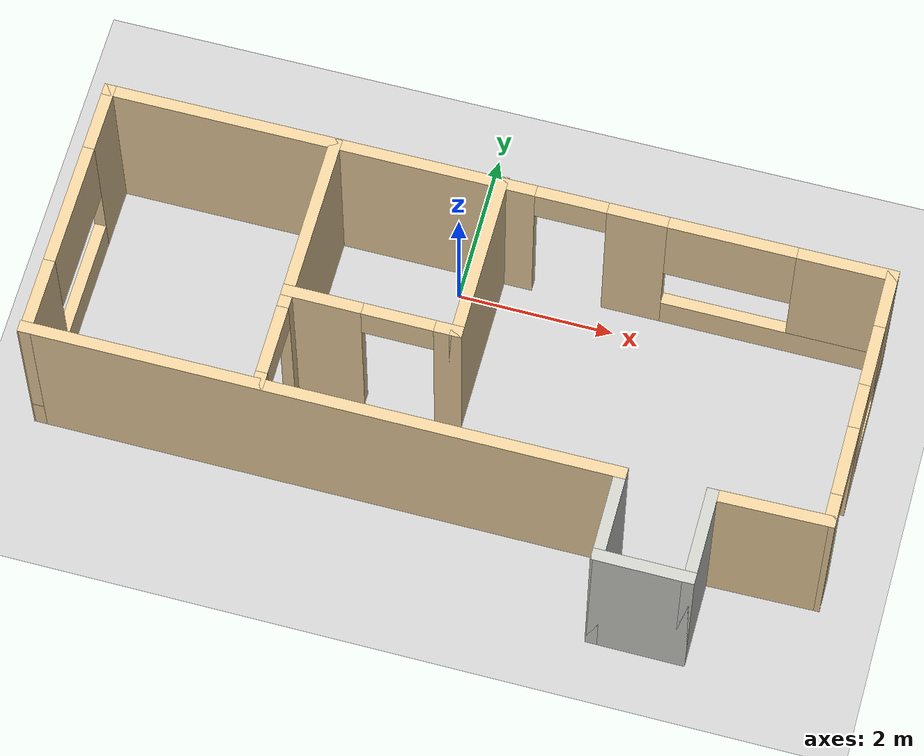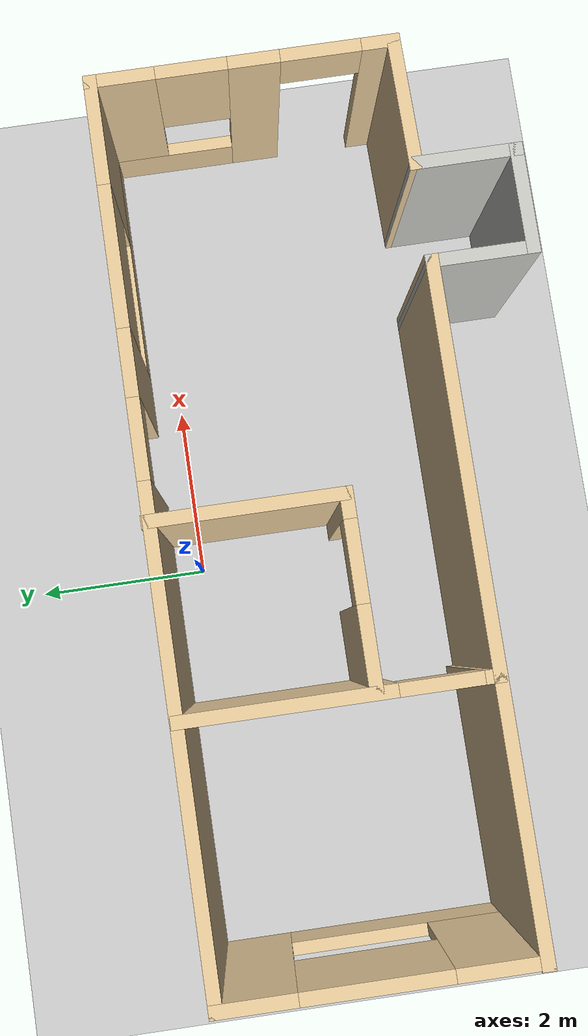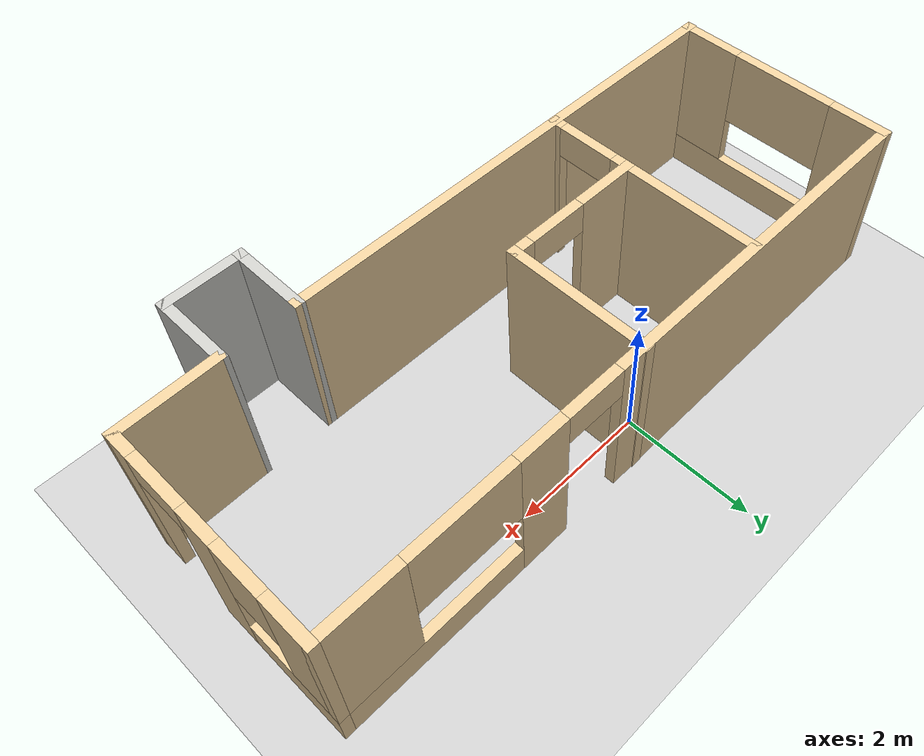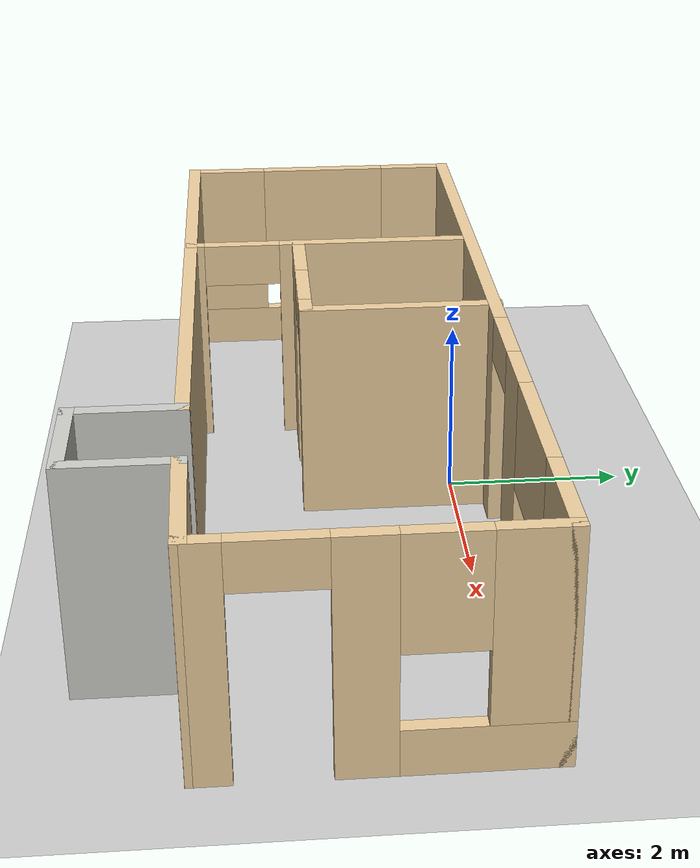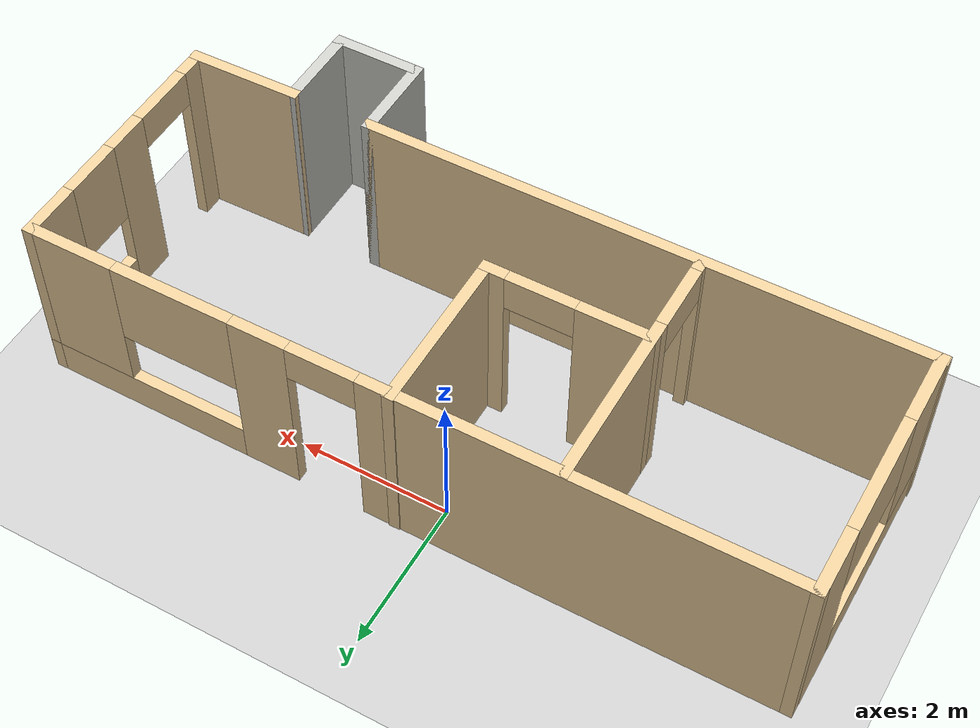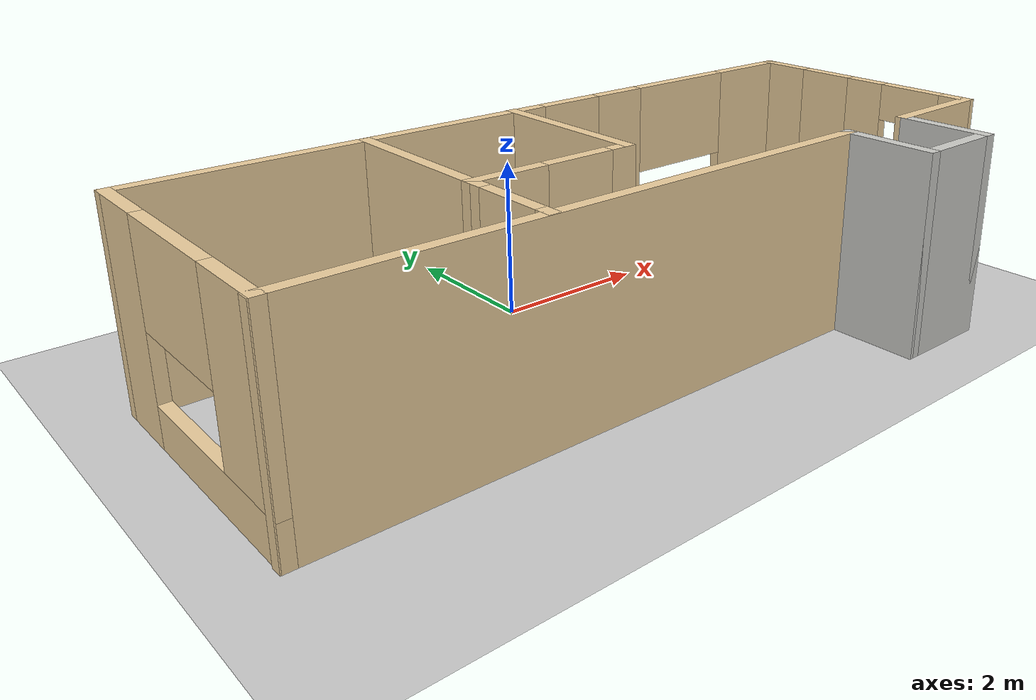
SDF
<sdf version="1.6">
 <world name="default">
  <model name="ground_plane">
   <static>1</static>
   <link name="link">
    <collision name="collision">
     <geometry><plane><normal>0 0 1</normal><size>100 100</size></plane></geometry>
     <surface><friction><ode><mu>100</mu><mu2>50</mu2></ode></friction></surface>
    </collision>
    <visual name="visual">
     <cast_shadows>0</cast_shadows>
     <geometry><plane><normal>0 0 1</normal><size>100 100</size></plane></geometry>
     <material>
      <script><uri>file://media/materials/scripts/gazebo.material</uri><name>Gazebo/Grey</name></script>
     </material>
    </visual>
   </link>
  </model>
  <model name="Building">
   <link name="Wall_0">
    <pose>0.006799 2.23043 0 0 -0 0</pose>
    <visual name="Wall_0_Visual_0">
     <pose>-2.25197 0 1.25 0 -0 0</pose>
     <geometry><box><size>5.49606 0.15 2.5</size></box></geometry>
     <material>
      <script><uri>file://media/materials/scripts/gazebo.material</uri><name>Gazebo/Grey</name></script>
      <ambient>0.921569 0.807843 0.615686 1</ambient>
      <shader type="pixel"/>
      <diffuse>0.7 0.7 0.7 1</diffuse>
      <specular>0.01 0.01 0.01 1</specular>
      <emissive>0 0 0 1</emissive>
     </material>
     <meta><layer>0</layer></meta>
    </visual>
    <visual name="Wall_0_Visual_1">
     <pose>1.77424 0 1.25 0 -0 0</pose>
     <geometry><box><size>0.756344 0.15 2.5</size></box></geometry>
     <material>
      <script><uri>file://media/materials/scripts/gazebo.material</uri><name>Gazebo/Grey</name></script>
      <ambient>0.921569 0.807843 0.615686 1</ambient>
      <shader type="pixel"/>
      <diffuse>0.7 0.7 0.7 1</diffuse>
      <specular>0.01 0.01 0.01 1</specular>
      <emissive>0 0 0 1</emissive>
     </material>
     <meta><layer>0</layer></meta>
    </visual>
    <visual name="Wall_0_Visual_2">
     <pose>3.5762 0 0.25 0 -0 0</pose>
     <geometry><box><size>2.84759 0.15 0.5</size></box></geometry>
     <material>
      <script><uri>file://media/materials/scripts/gazebo.material</uri><name>Gazebo/Grey</name></script>
      <ambient>0.921569 0.807843 0.615686 1</ambient>
      <shader type="pixel"/>
      <diffuse>0.7 0.7 0.7 1</diffuse>
      <specular>0.01 0.01 0.01 1</specular>
      <emissive>0 0 0 1</emissive>
     </material>
     <meta><layer>0</layer></meta>
    </visual>
    <visual name="Wall_0_Visual_3">
     <pose>4.3762 0 1.5 0 -0 0</pose>
     <geometry><box><size>1.24759 0.15 2</size></box></geometry>
     <material>
      <script><uri>file://media/materials/scripts/gazebo.material</uri><name>Gazebo/Grey</name></script>
      <ambient>0.921569 0.807843 0.615686 1</ambient>
      <shader type="pixel"/>
      <diffuse>0.7 0.7 0.7 1</diffuse>
      <specular>0.01 0.01 0.01 1</specular>
      <emissive>0 0 0 1</emissive>
     </material>
     <meta><layer>0</layer></meta>
    </visual>
    <visual name="Wall_0_Visual_4">
     <pose>2.95241 0 1.9 0 -0 0</pose>
     <geometry><box><size>1.6 0.15 1.2</size></box></geometry>
     <material>
      <script><uri>file://media/materials/scripts/gazebo.material</uri><name>Gazebo/Grey</name></script>
      <ambient>0.921569 0.807843 0.615686 1</ambient>
      <shader type="pixel"/>
      <diffuse>0.7 0.7 0.7 1</diffuse>
      <specular>0.01 0.01 0.01 1</specular>
      <emissive>0 0 0 1</emissive>
     </material>
     <meta><layer>0</layer></meta>
    </visual>
    <visual name="Wall_0_Visual_5">
     <pose>0.946064 0 2.25 0 -0 0</pose>
     <geometry><box><size>0.9 0.15 0.5</size></box></geometry>
     <material>
      <script><uri>file://media/materials/scripts/gazebo.material</uri><name>Gazebo/Grey</name></script>
      <ambient>0.921569 0.807843 0.615686 1</ambient>
      <shader type="pixel"/>
      <diffuse>0.7 0.7 0.7 1</diffuse>
      <specular>0.01 0.01 0.01 1</specular>
      <emissive>0 0 0 1</emissive>
     </material>
     <meta><layer>0</layer></meta>
    </visual>
    <collision name="Wall_0_Collision_4">
     <pose>2.95241 0 1.9 0 -0 0</pose>
     <geometry><box><size>1.6 0.15 1.2</size></box></geometry>
     <surface>
      <friction>
       <ode><mu>1</mu><mu2>1</mu2><fdir1>0 0 0</fdir1><slip1>0</slip1><slip2>0</slip2></ode>
       <torsional>
        <coefficient>1</coefficient>
        <patch_radius>0</patch_radius>
        <surface_radius>0</surface_radius>
        <use_patch_radius>1</use_patch_radius>
        <ode><slip>0</slip></ode>
       </torsional>
      </friction>
      <bounce><restitution_coefficient>0</restitution_coefficient><threshold>1e+06</threshold></bounce>
      <contact>
       <collide_without_contact>0</collide_without_contact>
       <collide_without_contact_bitmask>1</collide_without_contact_bitmask>
       <collide_bitmask>1</collide_bitmask>
       <ode>
        <soft_cfm>0</soft_cfm>
        <soft_erp>0.2</soft_erp>
        <kp>1e+13</kp>
        <kd>1</kd>
        <max_vel>0.01</max_vel>
        <min_depth>0</min_depth>
       </ode>
       <bullet>
        <split_impulse>1</split_impulse>
        <split_impulse_penetration_threshold>-0.01</split_impulse_penetration_threshold>
        <soft_cfm>0</soft_cfm>
        <soft_erp>0.2</soft_erp>
        <kp>1e+13</kp>
        <kd>1</kd>
       </bullet>
      </contact>
     </surface>
    </collision>
    <collision name="Wall_0_Collision_0">
     <pose>-2.25197 0 1.25 0 -0 0</pose>
     <geometry><box><size>5.49606 0.15 2.5</size></box></geometry>
     <surface>
      <friction>
       <ode><mu>1</mu><mu2>1</mu2><fdir1>0 0 0</fdir1><slip1>0</slip1><slip2>0</slip2></ode>
       <torsional>
        <coefficient>1</coefficient>
        <patch_radius>0</patch_radius>
        <surface_radius>0</surface_radius>
        <use_patch_radius>1</use_patch_radius>
        <ode><slip>0</slip></ode>
       </torsional>
      </friction>
      <bounce><restitution_coefficient>0</restitution_coefficient><threshold>1e+06</threshold></bounce>
      <contact>
       <collide_without_contact>0</collide_without_contact>
       <collide_without_contact_bitmask>1</collide_without_contact_bitmask>
       <collide_bitmask>1</collide_bitmask>
       <ode>
        <soft_cfm>0</soft_cfm>
        <soft_erp>0.2</soft_erp>
        <kp>1e+13</kp>
        <kd>1</kd>
        <max_vel>0.01</max_vel>
        <min_depth>0</min_depth>
       </ode>
       <bullet>
        <split_impulse>1</split_impulse>
        <split_impulse_penetration_threshold>-0.01</split_impulse_penetration_threshold>
        <soft_cfm>0</soft_cfm>
        <soft_erp>0.2</soft_erp>
        <kp>1e+13</kp>
        <kd>1</kd>
       </bullet>
      </contact>
     </surface>
    </collision>
    <collision name="Wall_0_Collision_1">
     <pose>1.77424 0 1.25 0 -0 0</pose>
     <geometry><box><size>0.756344 0.15 2.5</size></box></geometry>
     <surface>
      <friction>
       <ode><mu>1</mu><mu2>1</mu2><fdir1>0 0 0</fdir1><slip1>0</slip1><slip2>0</slip2></ode>
       <torsional>
        <coefficient>1</coefficient>
        <patch_radius>0</patch_radius>
        <surface_radius>0</surface_radius>
        <use_patch_radius>1</use_patch_radius>
        <ode><slip>0</slip></ode>
       </torsional>
      </friction>
      <bounce><restitution_coefficient>0</restitution_coefficient><threshold>1e+06</threshold></bounce>
      <contact>
       <collide_without_contact>0</collide_without_contact>
       <collide_without_contact_bitmask>1</collide_without_contact_bitmask>
       <collide_bitmask>1</collide_bitmask>
       <ode>
        <soft_cfm>0</soft_cfm>
        <soft_erp>0.2</soft_erp>
        <kp>1e+13</kp>
        <kd>1</kd>
        <max_vel>0.01</max_vel>
        <min_depth>0</min_depth>
       </ode>
       <bullet>
        <split_impulse>1</split_impulse>
        <split_impulse_penetration_threshold>-0.01</split_impulse_penetration_threshold>
        <soft_cfm>0</soft_cfm>
        <soft_erp>0.2</soft_erp>
        <kp>1e+13</kp>
        <kd>1</kd>
       </bullet>
      </contact>
     </surface>
    </collision>
    <collision name="Wall_0_Collision_2">
     <pose>3.5762 0 0.25 0 -0 0</pose>
     <geometry><box><size>2.84759 0.15 0.5</size></box></geometry>
     <surface>
      <friction>
       <ode><mu>1</mu><mu2>1</mu2><fdir1>0 0 0</fdir1><slip1>0</slip1><slip2>0</slip2></ode>
       <torsional>
        <coefficient>1</coefficient>
        <patch_radius>0</patch_radius>
        <surface_radius>0</surface_radius>
        <use_patch_radius>1</use_patch_radius>
        <ode><slip>0</slip></ode>
       </torsional>
      </friction>
      <bounce><restitution_coefficient>0</restitution_coefficient><threshold>1e+06</threshold></bounce>
      <contact>
       <collide_without_contact>0</collide_without_contact>
       <collide_without_contact_bitmask>1</collide_without_contact_bitmask>
       <collide_bitmask>1</collide_bitmask>
       <ode>
        <soft_cfm>0</soft_cfm>
        <soft_erp>0.2</soft_erp>
        <kp>1e+13</kp>
        <kd>1</kd>
        <max_vel>0.01</max_vel>
        <min_depth>0</min_depth>
       </ode>
       <bullet>
        <split_impulse>1</split_impulse>
        <split_impulse_penetration_threshold>-0.01</split_impulse_penetration_threshold>
        <soft_cfm>0</soft_cfm>
        <soft_erp>0.2</soft_erp>
        <kp>1e+13</kp>
        <kd>1</kd>
       </bullet>
      </contact>
     </surface>
    </collision>
    <collision name="Wall_0_Collision_3">
     <pose>4.3762 0 1.5 0 -0 0</pose>
     <geometry><box><size>1.24759 0.15 2</size></box></geometry>
     <surface>
      <friction>
       <ode><mu>1</mu><mu2>1</mu2><fdir1>0 0 0</fdir1><slip1>0</slip1><slip2>0</slip2></ode>
       <torsional>
        <coefficient>1</coefficient>
        <patch_radius>0</patch_radius>
        <surface_radius>0</surface_radius>
        <use_patch_radius>1</use_patch_radius>
        <ode><slip>0</slip></ode>
       </torsional>
      </friction>
      <bounce><restitution_coefficient>0</restitution_coefficient><threshold>1e+06</threshold></bounce>
      <contact>
       <collide_without_contact>0</collide_without_contact>
       <collide_without_contact_bitmask>1</collide_without_contact_bitmask>
       <collide_bitmask>1</collide_bitmask>
       <ode>
        <soft_cfm>0</soft_cfm>
        <soft_erp>0.2</soft_erp>
        <kp>1e+13</kp>
        <kd>1</kd>
        <max_vel>0.01</max_vel>
        <min_depth>0</min_depth>
       </ode>
       <bullet>
        <split_impulse>1</split_impulse>
        <split_impulse_penetration_threshold>-0.01</split_impulse_penetration_threshold>
        <soft_cfm>0</soft_cfm>
        <soft_erp>0.2</soft_erp>
        <kp>1e+13</kp>
        <kd>1</kd>
       </bullet>
      </contact>
     </surface>
    </collision>
    <collision name="Wall_0_Collision_5">
     <pose>0.946064 0 2.25 0 -0 0</pose>
     <geometry><box><size>0.9 0.15 0.5</size></box></geometry>
     <surface>
      <friction>
       <ode><mu>1</mu><mu2>1</mu2><fdir1>0 0 0</fdir1><slip1>0</slip1><slip2>0</slip2></ode>
       <torsional>
        <coefficient>1</coefficient>
        <patch_radius>0</patch_radius>
        <surface_radius>0</surface_radius>
        <use_patch_radius>1</use_patch_radius>
        <ode><slip>0</slip></ode>
       </torsional>
      </friction>
      <bounce><restitution_coefficient>0</restitution_coefficient><threshold>1e+06</threshold></bounce>
      <contact>
       <collide_without_contact>0</collide_without_contact>
       <collide_without_contact_bitmask>1</collide_without_contact_bitmask>
       <collide_bitmask>1</collide_bitmask>
       <ode>
        <soft_cfm>0</soft_cfm>
        <soft_erp>0.2</soft_erp>
        <kp>1e+13</kp>
        <kd>1</kd>
        <max_vel>0.01</max_vel>
        <min_depth>0</min_depth>
       </ode>
       <bullet>
        <split_impulse>1</split_impulse>
        <split_impulse_penetration_threshold>-0.01</split_impulse_penetration_threshold>
        <soft_cfm>0</soft_cfm>
        <soft_erp>0.2</soft_erp>
        <kp>1e+13</kp>
        <kd>1</kd>
       </bullet>
      </contact>
     </surface>
    </collision>
   </link>
   <link name="Wall_16">
    <pose>-1.25812 -1.14465 0 0 -0 0</pose>
    <visual name="Wall_16_Visual">
     <pose>0 0 1.25 0 -0 0</pose>
     <geometry><box><size>7.5 0.15 2.5</size></box></geometry>
     <material>
      <script><uri>file://media/materials/scripts/gazebo.material</uri><name>Gazebo/Grey</name></script>
      <ambient>0.921569 0.807843 0.615686 1</ambient>
      <shader type="pixel"/>
      <diffuse>0.7 0.7 0.7 1</diffuse>
      <specular>0.01 0.01 0.01 1</specular>
      <emissive>0 0 0 1</emissive>
     </material>
     <meta><layer>0</layer></meta>
    </visual>
    <collision name="Wall_16_Collision">
     <pose>0 0 1.25 0 -0 0</pose>
     <geometry><box><size>7.5 0.15 2.5</size></box></geometry>
     <surface>
      <friction>
       <ode><mu>1</mu><mu2>1</mu2><fdir1>0 0 0</fdir1><slip1>0</slip1><slip2>0</slip2></ode>
       <torsional>
        <coefficient>1</coefficient>
        <patch_radius>0</patch_radius>
        <surface_radius>0</surface_radius>
        <use_patch_radius>1</use_patch_radius>
        <ode><slip>0</slip></ode>
       </torsional>
      </friction>
      <bounce><restitution_coefficient>0</restitution_coefficient><threshold>1e+06</threshold></bounce>
      <contact>
       <collide_without_contact>0</collide_without_contact>
       <collide_without_contact_bitmask>1</collide_without_contact_bitmask>
       <collide_bitmask>1</collide_bitmask>
       <ode>
        <soft_cfm>0</soft_cfm>
        <soft_erp>0.2</soft_erp>
        <kp>1e+13</kp>
        <kd>1</kd>
        <max_vel>0.01</max_vel>
        <min_depth>0</min_depth>
       </ode>
       <bullet>
        <split_impulse>1</split_impulse>
        <split_impulse_penetration_threshold>-0.01</split_impulse_penetration_threshold>
        <soft_cfm>0</soft_cfm>
        <soft_erp>0.2</soft_erp>
        <kp>1e+13</kp>
        <kd>1</kd>
       </bullet>
      </contact>
     </surface>
    </collision>
   </link>
   <link name="Wall_2">
    <pose>-4.9182 0.542893 0 0 0 -1.5708</pose>
    <visual name="Wall_2_Visual_0">
     <pose>-1.30389 0 1.25 0 -0 0</pose>
     <geometry><box><size>0.917433 0.15 2.5</size></box></geometry>
     <material>
      <script><uri>file://media/materials/scripts/gazebo.material</uri><name>Gazebo/Grey</name></script>
      <ambient>0.921569 0.807843 0.615686 1</ambient>
      <shader type="pixel"/>
      <diffuse>0.7 0.7 0.7 1</diffuse>
      <specular>0.01 0.01 0.01 1</specular>
      <emissive>0 0 0 1</emissive>
     </material>
     <meta><layer>0</layer></meta>
    </visual>
    <visual name="Wall_2_Visual_1">
     <pose>0.458716 0 0.25 0 -0 0</pose>
     <geometry><box><size>2.60778 0.15 0.5</size></box></geometry>
     <material>
      <script><uri>file://media/materials/scripts/gazebo.material</uri><name>Gazebo/Grey</name></script>
      <ambient>0.921569 0.807843 0.615686 1</ambient>
      <shader type="pixel"/>
      <diffuse>0.7 0.7 0.7 1</diffuse>
      <specular>0.01 0.01 0.01 1</specular>
      <emissive>0 0 0 1</emissive>
     </material>
     <meta><layer>0</layer></meta>
    </visual>
    <visual name="Wall_2_Visual_2">
     <pose>1.25872 0 1.5 0 -0 0</pose>
     <geometry><box><size>1.00778 0.15 2</size></box></geometry>
     <material>
      <script><uri>file://media/materials/scripts/gazebo.material</uri><name>Gazebo/Grey</name></script>
      <ambient>0.921569 0.807843 0.615686 1</ambient>
      <shader type="pixel"/>
      <diffuse>0.7 0.7 0.7 1</diffuse>
      <specular>0.01 0.01 0.01 1</specular>
      <emissive>0 0 0 1</emissive>
     </material>
     <meta><layer>0</layer></meta>
    </visual>
    <visual name="Wall_2_Visual_3">
     <pose>-0.045176 0 1.9 0 -0 0</pose>
     <geometry><box><size>1.6 0.15 1.2</size></box></geometry>
     <material>
      <script><uri>file://media/materials/scripts/gazebo.material</uri><name>Gazebo/Grey</name></script>
      <ambient>0.921569 0.807843 0.615686 1</ambient>
      <shader type="pixel"/>
      <diffuse>0.7 0.7 0.7 1</diffuse>
      <specular>0.01 0.01 0.01 1</specular>
      <emissive>0 0 0 1</emissive>
     </material>
     <meta><layer>0</layer></meta>
    </visual>
    <collision name="Wall_2_Collision_0">
     <pose>-1.30389 0 1.25 0 -0 0</pose>
     <geometry><box><size>0.917433 0.15 2.5</size></box></geometry>
     <surface>
      <friction>
       <ode><mu>1</mu><mu2>1</mu2><fdir1>0 0 0</fdir1><slip1>0</slip1><slip2>0</slip2></ode>
       <torsional>
        <coefficient>1</coefficient>
        <patch_radius>0</patch_radius>
        <surface_radius>0</surface_radius>
        <use_patch_radius>1</use_patch_radius>
        <ode><slip>0</slip></ode>
       </torsional>
      </friction>
      <bounce><restitution_coefficient>0</restitution_coefficient><threshold>1e+06</threshold></bounce>
      <contact>
       <collide_without_contact>0</collide_without_contact>
       <collide_without_contact_bitmask>1</collide_without_contact_bitmask>
       <collide_bitmask>1</collide_bitmask>
       <ode>
        <soft_cfm>0</soft_cfm>
        <soft_erp>0.2</soft_erp>
        <kp>1e+13</kp>
        <kd>1</kd>
        <max_vel>0.01</max_vel>
        <min_depth>0</min_depth>
       </ode>
       <bullet>
        <split_impulse>1</split_impulse>
        <split_impulse_penetration_threshold>-0.01</split_impulse_penetration_threshold>
        <soft_cfm>0</soft_cfm>
        <soft_erp>0.2</soft_erp>
        <kp>1e+13</kp>
        <kd>1</kd>
       </bullet>
      </contact>
     </surface>
    </collision>
    <collision name="Wall_2_Collision_1">
     <pose>0.458716 0 0.25 0 -0 0</pose>
     <geometry><box><size>2.60778 0.15 0.5</size></box></geometry>
     <surface>
      <friction>
       <ode><mu>1</mu><mu2>1</mu2><fdir1>0 0 0</fdir1><slip1>0</slip1><slip2>0</slip2></ode>
       <torsional>
        <coefficient>1</coefficient>
        <patch_radius>0</patch_radius>
        <surface_radius>0</surface_radius>
        <use_patch_radius>1</use_patch_radius>
        <ode><slip>0</slip></ode>
       </torsional>
      </friction>
      <bounce><restitution_coefficient>0</restitution_coefficient><threshold>1e+06</threshold></bounce>
      <contact>
       <collide_without_contact>0</collide_without_contact>
       <collide_without_contact_bitmask>1</collide_without_contact_bitmask>
       <collide_bitmask>1</collide_bitmask>
       <ode>
        <soft_cfm>0</soft_cfm>
        <soft_erp>0.2</soft_erp>
        <kp>1e+13</kp>
        <kd>1</kd>
        <max_vel>0.01</max_vel>
        <min_depth>0</min_depth>
       </ode>
       <bullet>
        <split_impulse>1</split_impulse>
        <split_impulse_penetration_threshold>-0.01</split_impulse_penetration_threshold>
        <soft_cfm>0</soft_cfm>
        <soft_erp>0.2</soft_erp>
        <kp>1e+13</kp>
        <kd>1</kd>
       </bullet>
      </contact>
     </surface>
    </collision>
    <collision name="Wall_2_Collision_2">
     <pose>1.25872 0 1.5 0 -0 0</pose>
     <geometry><box><size>1.00778 0.15 2</size></box></geometry>
     <surface>
      <friction>
       <ode><mu>1</mu><mu2>1</mu2><fdir1>0 0 0</fdir1><slip1>0</slip1><slip2>0</slip2></ode>
       <torsional>
        <coefficient>1</coefficient>
        <patch_radius>0</patch_radius>
        <surface_radius>0</surface_radius>
        <use_patch_radius>1</use_patch_radius>
        <ode><slip>0</slip></ode>
       </torsional>
      </friction>
      <bounce><restitution_coefficient>0</restitution_coefficient><threshold>1e+06</threshold></bounce>
      <contact>
       <collide_without_contact>0</collide_without_contact>
       <collide_without_contact_bitmask>1</collide_without_contact_bitmask>
       <collide_bitmask>1</collide_bitmask>
       <ode>
        <soft_cfm>0</soft_cfm>
        <soft_erp>0.2</soft_erp>
        <kp>1e+13</kp>
        <kd>1</kd>
        <max_vel>0.01</max_vel>
        <min_depth>0</min_depth>
       </ode>
       <bullet>
        <split_impulse>1</split_impulse>
        <split_impulse_penetration_threshold>-0.01</split_impulse_penetration_threshold>
        <soft_cfm>0</soft_cfm>
        <soft_erp>0.2</soft_erp>
        <kp>1e+13</kp>
        <kd>1</kd>
       </bullet>
      </contact>
     </surface>
    </collision>
    <collision name="Wall_2_Collision_3">
     <pose>-0.045176 0 1.9 0 -0 0</pose>
     <geometry><box><size>1.6 0.15 1.2</size></box></geometry>
     <surface>
      <friction>
       <ode><mu>1</mu><mu2>1</mu2><fdir1>0 0 0</fdir1><slip1>0</slip1><slip2>0</slip2></ode>
       <torsional>
        <coefficient>1</coefficient>
        <patch_radius>0</patch_radius>
        <surface_radius>0</surface_radius>
        <use_patch_radius>1</use_patch_radius>
        <ode><slip>0</slip></ode>
       </torsional>
      </friction>
      <bounce><restitution_coefficient>0</restitution_coefficient><threshold>1e+06</threshold></bounce>
      <contact>
       <collide_without_contact>0</collide_without_contact>
       <collide_without_contact_bitmask>1</collide_without_contact_bitmask>
       <collide_bitmask>1</collide_bitmask>
       <ode>
        <soft_cfm>0</soft_cfm>
        <soft_erp>0.2</soft_erp>
        <kp>1e+13</kp>
        <kd>1</kd>
        <max_vel>0.01</max_vel>
        <min_depth>0</min_depth>
       </ode>
       <bullet>
        <split_impulse>1</split_impulse>
        <split_impulse_penetration_threshold>-0.01</split_impulse_penetration_threshold>
        <soft_cfm>0</soft_cfm>
        <soft_erp>0.2</soft_erp>
        <kp>1e+13</kp>
        <kd>1</kd>
       </bullet>
      </contact>
     </surface>
    </collision>
   </link>
   <link name="Wall_28">
    <pose>0.069517 1.19465 0 0 -0 1.5708</pose>
    <visual name="Wall_28_Visual">
     <pose>0 0 1.25 0 -0 0</pose>
     <geometry><box><size>2.25 0.15 2.5</size></box></geometry>
     <material>
      <script><uri>file://media/materials/scripts/gazebo.material</uri><name>Gazebo/Grey</name></script>
      <ambient>0.921569 0.807843 0.615686 1</ambient>
      <shader type="pixel"/>
      <diffuse>0.7 0.7 0.7 1</diffuse>
      <specular>0.01 0.01 0.01 1</specular>
      <emissive>0 0 0 1</emissive>
     </material>
     <meta><layer>0</layer></meta>
    </visual>
    <collision name="Wall_28_Collision">
     <pose>0 0 1.25 0 -0 0</pose>
     <geometry><box><size>2.25 0.15 2.5</size></box></geometry>
     <surface>
      <friction>
       <ode><mu>1</mu><mu2>1</mu2><fdir1>0 0 0</fdir1><slip1>0</slip1><slip2>0</slip2></ode>
       <torsional>
        <coefficient>1</coefficient>
        <patch_radius>0</patch_radius>
        <surface_radius>0</surface_radius>
        <use_patch_radius>1</use_patch_radius>
        <ode><slip>0</slip></ode>
       </torsional>
      </friction>
      <bounce><restitution_coefficient>0</restitution_coefficient><threshold>1e+06</threshold></bounce>
      <contact>
       <collide_without_contact>0</collide_without_contact>
       <collide_without_contact_bitmask>1</collide_without_contact_bitmask>
       <collide_bitmask>1</collide_bitmask>
       <ode>
        <soft_cfm>0</soft_cfm>
        <soft_erp>0.2</soft_erp>
        <kp>1e+13</kp>
        <kd>1</kd>
        <max_vel>0.01</max_vel>
        <min_depth>0</min_depth>
       </ode>
       <bullet>
        <split_impulse>1</split_impulse>
        <split_impulse_penetration_threshold>-0.01</split_impulse_penetration_threshold>
        <soft_cfm>0</soft_cfm>
        <soft_erp>0.2</soft_erp>
        <kp>1e+13</kp>
        <kd>1</kd>
       </bullet>
      </contact>
     </surface>
    </collision>
   </link>
   <link name="Wall_33">
    <pose>2.41688 -1.69465 0 0 0 -1.5708</pose>
    <visual name="Wall_33_Visual">
     <pose>0 0 1.25 0 -0 0</pose>
     <geometry><box><size>1.25 0.15 2.5</size></box></geometry>
     <material>
      <script><uri>file://media/materials/scripts/gazebo.material</uri><name>Gazebo/CeilingTiled</name></script>
      <ambient>0.921569 0.807843 0.615686 1</ambient>
      <shader type="pixel"/>
      <diffuse>1 1 1 1</diffuse>
      <specular>0 0 0 1</specular>
      <emissive>0 0 0 1</emissive>
     </material>
     <meta><layer>0</layer></meta>
    </visual>
    <collision name="Wall_33_Collision">
     <pose>0 0 1.25 0 -0 0</pose>
     <geometry><box><size>1.25 0.15 2.5</size></box></geometry>
     <surface>
      <friction>
       <ode><mu>1</mu><mu2>1</mu2><fdir1>0 0 0</fdir1><slip1>0</slip1><slip2>0</slip2></ode>
       <torsional>
        <coefficient>1</coefficient>
        <patch_radius>0</patch_radius>
        <surface_radius>0</surface_radius>
        <use_patch_radius>1</use_patch_radius>
        <ode><slip>0</slip></ode>
       </torsional>
      </friction>
      <bounce><restitution_coefficient>0</restitution_coefficient><threshold>1e+06</threshold></bounce>
      <contact>
       <collide_without_contact>0</collide_without_contact>
       <collide_without_contact_bitmask>1</collide_without_contact_bitmask>
       <collide_bitmask>1</collide_bitmask>
       <ode>
        <soft_cfm>0</soft_cfm>
        <soft_erp>0.2</soft_erp>
        <kp>1e+13</kp>
        <kd>1</kd>
        <max_vel>0.01</max_vel>
        <min_depth>0</min_depth>
       </ode>
       <bullet>
        <split_impulse>1</split_impulse>
        <split_impulse_penetration_threshold>-0.01</split_impulse_penetration_threshold>
        <soft_cfm>0</soft_cfm>
        <soft_erp>0.2</soft_erp>
        <kp>1e+13</kp>
        <kd>1</kd>
       </bullet>
      </contact>
     </surface>
    </collision>
   </link>
   <link name="Wall_34">
    <pose>2.96688 -2.24465 0 0 -0 0</pose>
    <visual name="Wall_34_Visual">
     <pose>0 0 1.25 0 -0 0</pose>
     <geometry><box><size>1.25 0.15 2.5</size></box></geometry>
     <material>
      <script><uri>file://media/materials/scripts/gazebo.material</uri><name>Gazebo/CeilingTiled</name></script>
      <ambient>0.921569 0.807843 0.615686 1</ambient>
      <shader type="pixel"/>
      <diffuse>1 1 1 1</diffuse>
      <specular>0 0 0 1</specular>
      <emissive>0 0 0 1</emissive>
     </material>
     <meta><layer>0</layer></meta>
    </visual>
    <collision name="Wall_34_Collision">
     <pose>0 0 1.25 0 -0 0</pose>
     <geometry><box><size>1.25 0.15 2.5</size></box></geometry>
     <surface>
      <friction>
       <ode><mu>1</mu><mu2>1</mu2><fdir1>0 0 0</fdir1><slip1>0</slip1><slip2>0</slip2></ode>
       <torsional>
        <coefficient>1</coefficient>
        <patch_radius>0</patch_radius>
        <surface_radius>0</surface_radius>
        <use_patch_radius>1</use_patch_radius>
        <ode><slip>0</slip></ode>
       </torsional>
      </friction>
      <bounce><restitution_coefficient>0</restitution_coefficient><threshold>1e+06</threshold></bounce>
      <contact>
       <collide_without_contact>0</collide_without_contact>
       <collide_without_contact_bitmask>1</collide_without_contact_bitmask>
       <collide_bitmask>1</collide_bitmask>
       <ode>
        <soft_cfm>0</soft_cfm>
        <soft_erp>0.2</soft_erp>
        <kp>1e+13</kp>
        <kd>1</kd>
        <max_vel>0.01</max_vel>
        <min_depth>0</min_depth>
       </ode>
       <bullet>
        <split_impulse>1</split_impulse>
        <split_impulse_penetration_threshold>-0.01</split_impulse_penetration_threshold>
        <soft_cfm>0</soft_cfm>
        <soft_erp>0.2</soft_erp>
        <kp>1e+13</kp>
        <kd>1</kd>
       </bullet>
      </contact>
     </surface>
    </collision>
   </link>
   <link name="Wall_35">
    <pose>3.51688 -1.69465 0 0 -0 1.5708</pose>
    <visual name="Wall_35_Visual">
     <pose>0 0 1.25 0 -0 0</pose>
     <geometry><box><size>1.25 0.15 2.5</size></box></geometry>
     <material>
      <script><uri>file://media/materials/scripts/gazebo.material</uri><name>Gazebo/CeilingTiled</name></script>
      <ambient>0.921569 0.807843 0.615686 1</ambient>
      <shader type="pixel"/>
      <diffuse>1 1 1 1</diffuse>
      <specular>0 0 0 1</specular>
      <emissive>0 0 0 1</emissive>
     </material>
     <meta><layer>0</layer></meta>
    </visual>
    <collision name="Wall_35_Collision">
     <pose>0 0 1.25 0 -0 0</pose>
     <geometry><box><size>1.25 0.15 2.5</size></box></geometry>
     <surface>
      <friction>
       <ode><mu>1</mu><mu2>1</mu2><fdir1>0 0 0</fdir1><slip1>0</slip1><slip2>0</slip2></ode>
       <torsional>
        <coefficient>1</coefficient>
        <patch_radius>0</patch_radius>
        <surface_radius>0</surface_radius>
        <use_patch_radius>1</use_patch_radius>
        <ode><slip>0</slip></ode>
       </torsional>
      </friction>
      <bounce><restitution_coefficient>0</restitution_coefficient><threshold>1e+06</threshold></bounce>
      <contact>
       <collide_without_contact>0</collide_without_contact>
       <collide_without_contact_bitmask>1</collide_without_contact_bitmask>
       <collide_bitmask>1</collide_bitmask>
       <ode>
        <soft_cfm>0</soft_cfm>
        <soft_erp>0.2</soft_erp>
        <kp>1e+13</kp>
        <kd>1</kd>
        <max_vel>0.01</max_vel>
        <min_depth>0</min_depth>
       </ode>
       <bullet>
        <split_impulse>1</split_impulse>
        <split_impulse_penetration_threshold>-0.01</split_impulse_penetration_threshold>
        <soft_cfm>0</soft_cfm>
        <soft_erp>0.2</soft_erp>
        <kp>1e+13</kp>
        <kd>1</kd>
       </bullet>
      </contact>
     </surface>
    </collision>
   </link>
   <link name="Wall_36">
    <pose>4.22434 -1.13211 0 0 -0 0.017727</pose>
    <visual name="Wall_36_Visual">
     <pose>0 0 1.25 0 -0 0</pose>
     <geometry><box><size>1.56514 0.15 2.5</size></box></geometry>
     <material>
      <script><uri>file://media/materials/scripts/gazebo.material</uri><name>Gazebo/Grey</name></script>
      <ambient>0.921569 0.807843 0.615686 1</ambient>
      <shader type="pixel"/>
      <diffuse>0.7 0.7 0.7 1</diffuse>
      <specular>0.01 0.01 0.01 1</specular>
      <emissive>0 0 0 1</emissive>
     </material>
     <meta><layer>0</layer></meta>
    </visual>
    <collision name="Wall_36_Collision">
     <pose>0 0 1.25 0 -0 0</pose>
     <geometry><box><size>1.56514 0.15 2.5</size></box></geometry>
     <surface>
      <friction>
       <ode><mu>1</mu><mu2>1</mu2><fdir1>0 0 0</fdir1><slip1>0</slip1><slip2>0</slip2></ode>
       <torsional>
        <coefficient>1</coefficient>
        <patch_radius>0</patch_radius>
        <surface_radius>0</surface_radius>
        <use_patch_radius>1</use_patch_radius>
        <ode><slip>0</slip></ode>
       </torsional>
      </friction>
      <bounce><restitution_coefficient>0</restitution_coefficient><threshold>1e+06</threshold></bounce>
      <contact>
       <collide_without_contact>0</collide_without_contact>
       <collide_without_contact_bitmask>1</collide_without_contact_bitmask>
       <collide_bitmask>1</collide_bitmask>
       <ode>
        <soft_cfm>0</soft_cfm>
        <soft_erp>0.2</soft_erp>
        <kp>1e+13</kp>
        <kd>1</kd>
        <max_vel>0.01</max_vel>
        <min_depth>0</min_depth>
       </ode>
       <bullet>
        <split_impulse>1</split_impulse>
        <split_impulse_penetration_threshold>-0.01</split_impulse_penetration_threshold>
        <soft_cfm>0</soft_cfm>
        <soft_erp>0.2</soft_erp>
        <kp>1e+13</kp>
        <kd>1</kd>
       </bullet>
      </contact>
     </surface>
    </collision>
   </link>
   <link name="Wall_5">
    <pose>4.9318 0.555435 0 0 -0 1.5708</pose>
    <visual name="Wall_5_Visual_0">
     <pose>-1.53446 0 1.25 0 -0 0</pose>
     <geometry><box><size>0.431088 0.15 2.5</size></box></geometry>
     <material>
      <script><uri>file://media/materials/scripts/gazebo.material</uri><name>Gazebo/Grey</name></script>
      <ambient>0.921569 0.807843 0.615686 1</ambient>
      <shader type="pixel"/>
      <diffuse>0.7 0.7 0.7 1</diffuse>
      <specular>0.01 0.01 0.01 1</specular>
      <emissive>0 0 0 1</emissive>
     </material>
     <meta><layer>0</layer></meta>
    </visual>
    <visual name="Wall_5_Visual_1">
     <pose>-0.128427 0 1.25 0 -0 0</pose>
     <geometry><box><size>0.58097 0.15 2.5</size></box></geometry>
     <material>
      <script><uri>file://media/materials/scripts/gazebo.material</uri><name>Gazebo/Grey</name></script>
      <ambient>0.921569 0.807843 0.615686 1</ambient>
      <shader type="pixel"/>
      <diffuse>0.7 0.7 0.7 1</diffuse>
      <specular>0.01 0.01 0.01 1</specular>
      <emissive>0 0 0 1</emissive>
     </material>
     <meta><layer>0</layer></meta>
    </visual>
    <visual name="Wall_5_Visual_2">
     <pose>0.956029 0 0.25 0 -0 0</pose>
     <geometry><box><size>1.58794 0.15 0.5</size></box></geometry>
     <material>
      <script><uri>file://media/materials/scripts/gazebo.material</uri><name>Gazebo/Grey</name></script>
      <ambient>0.921569 0.807843 0.615686 1</ambient>
      <shader type="pixel"/>
      <diffuse>0.7 0.7 0.7 1</diffuse>
      <specular>0.01 0.01 0.01 1</specular>
      <emissive>0 0 0 1</emissive>
     </material>
     <meta><layer>0</layer></meta>
    </visual>
    <visual name="Wall_5_Visual_3">
     <pose>1.35603 0 1.5 0 -0 0</pose>
     <geometry><box><size>0.787942 0.15 2</size></box></geometry>
     <material>
      <script><uri>file://media/materials/scripts/gazebo.material</uri><name>Gazebo/Grey</name></script>
      <ambient>0.921569 0.807843 0.615686 1</ambient>
      <shader type="pixel"/>
      <diffuse>0.7 0.7 0.7 1</diffuse>
      <specular>0.01 0.01 0.01 1</specular>
      <emissive>0 0 0 1</emissive>
     </material>
     <meta><layer>0</layer></meta>
    </visual>
    <visual name="Wall_5_Visual_4">
     <pose>0.562058 0 1.9 0 -0 0</pose>
     <geometry><box><size>0.8 0.15 1.2</size></box></geometry>
     <material>
      <script><uri>file://media/materials/scripts/gazebo.material</uri><name>Gazebo/Grey</name></script>
      <ambient>0.921569 0.807843 0.615686 1</ambient>
      <shader type="pixel"/>
      <diffuse>0.7 0.7 0.7 1</diffuse>
      <specular>0.01 0.01 0.01 1</specular>
      <emissive>0 0 0 1</emissive>
     </material>
     <meta><layer>0</layer></meta>
    </visual>
    <visual name="Wall_5_Visual_5">
     <pose>-0.868912 0 2.25 0 -0 0</pose>
     <geometry><box><size>0.9 0.15 0.5</size></box></geometry>
     <material>
      <script><uri>file://media/materials/scripts/gazebo.material</uri><name>Gazebo/Grey</name></script>
      <ambient>0.921569 0.807843 0.615686 1</ambient>
      <shader type="pixel"/>
      <diffuse>0.7 0.7 0.7 1</diffuse>
      <specular>0.01 0.01 0.01 1</specular>
      <emissive>0 0 0 1</emissive>
     </material>
     <meta><layer>0</layer></meta>
    </visual>
    <collision name="Wall_5_Collision_0">
     <pose>-1.53446 0 1.25 0 -0 0</pose>
     <geometry><box><size>0.431088 0.15 2.5</size></box></geometry>
     <surface>
      <friction>
       <ode><mu>1</mu><mu2>1</mu2><fdir1>0 0 0</fdir1><slip1>0</slip1><slip2>0</slip2></ode>
       <torsional>
        <coefficient>1</coefficient>
        <patch_radius>0</patch_radius>
        <surface_radius>0</surface_radius>
        <use_patch_radius>1</use_patch_radius>
        <ode><slip>0</slip></ode>
       </torsional>
      </friction>
      <bounce><restitution_coefficient>0</restitution_coefficient><threshold>1e+06</threshold></bounce>
      <contact>
       <collide_without_contact>0</collide_without_contact>
       <collide_without_contact_bitmask>1</collide_without_contact_bitmask>
       <collide_bitmask>1</collide_bitmask>
       <ode>
        <soft_cfm>0</soft_cfm>
        <soft_erp>0.2</soft_erp>
        <kp>1e+13</kp>
        <kd>1</kd>
        <max_vel>0.01</max_vel>
        <min_depth>0</min_depth>
       </ode>
       <bullet>
        <split_impulse>1</split_impulse>
        <split_impulse_penetration_threshold>-0.01</split_impulse_penetration_threshold>
        <soft_cfm>0</soft_cfm>
        <soft_erp>0.2</soft_erp>
        <kp>1e+13</kp>
        <kd>1</kd>
       </bullet>
      </contact>
     </surface>
    </collision>
    <collision name="Wall_5_Collision_1">
     <pose>-0.128427 0 1.25 0 -0 0</pose>
     <geometry><box><size>0.58097 0.15 2.5</size></box></geometry>
     <surface>
      <friction>
       <ode><mu>1</mu><mu2>1</mu2><fdir1>0 0 0</fdir1><slip1>0</slip1><slip2>0</slip2></ode>
       <torsional>
        <coefficient>1</coefficient>
        <patch_radius>0</patch_radius>
        <surface_radius>0</surface_radius>
        <use_patch_radius>1</use_patch_radius>
        <ode><slip>0</slip></ode>
       </torsional>
      </friction>
      <bounce><restitution_coefficient>0</restitution_coefficient><threshold>1e+06</threshold></bounce>
      <contact>
       <collide_without_contact>0</collide_without_contact>
       <collide_without_contact_bitmask>1</collide_without_contact_bitmask>
       <collide_bitmask>1</collide_bitmask>
       <ode>
        <soft_cfm>0</soft_cfm>
        <soft_erp>0.2</soft_erp>
        <kp>1e+13</kp>
        <kd>1</kd>
        <max_vel>0.01</max_vel>
        <min_depth>0</min_depth>
       </ode>
       <bullet>
        <split_impulse>1</split_impulse>
        <split_impulse_penetration_threshold>-0.01</split_impulse_penetration_threshold>
        <soft_cfm>0</soft_cfm>
        <soft_erp>0.2</soft_erp>
        <kp>1e+13</kp>
        <kd>1</kd>
       </bullet>
      </contact>
     </surface>
    </collision>
    <collision name="Wall_5_Collision_2">
     <pose>0.956029 0 0.25 0 -0 0</pose>
     <geometry><box><size>1.58794 0.15 0.5</size></box></geometry>
     <surface>
      <friction>
       <ode><mu>1</mu><mu2>1</mu2><fdir1>0 0 0</fdir1><slip1>0</slip1><slip2>0</slip2></ode>
       <torsional>
        <coefficient>1</coefficient>
        <patch_radius>0</patch_radius>
        <surface_radius>0</surface_radius>
        <use_patch_radius>1</use_patch_radius>
        <ode><slip>0</slip></ode>
       </torsional>
      </friction>
      <bounce><restitution_coefficient>0</restitution_coefficient><threshold>1e+06</threshold></bounce>
      <contact>
       <collide_without_contact>0</collide_without_contact>
       <collide_without_contact_bitmask>1</collide_without_contact_bitmask>
       <collide_bitmask>1</collide_bitmask>
       <ode>
        <soft_cfm>0</soft_cfm>
        <soft_erp>0.2</soft_erp>
        <kp>1e+13</kp>
        <kd>1</kd>
        <max_vel>0.01</max_vel>
        <min_depth>0</min_depth>
       </ode>
       <bullet>
        <split_impulse>1</split_impulse>
        <split_impulse_penetration_threshold>-0.01</split_impulse_penetration_threshold>
        <soft_cfm>0</soft_cfm>
        <soft_erp>0.2</soft_erp>
        <kp>1e+13</kp>
        <kd>1</kd>
       </bullet>
      </contact>
     </surface>
    </collision>
    <collision name="Wall_5_Collision_3">
     <pose>1.35603 0 1.5 0 -0 0</pose>
     <geometry><box><size>0.787942 0.15 2</size></box></geometry>
     <surface>
      <friction>
       <ode><mu>1</mu><mu2>1</mu2><fdir1>0 0 0</fdir1><slip1>0</slip1><slip2>0</slip2></ode>
       <torsional>
        <coefficient>1</coefficient>
        <patch_radius>0</patch_radius>
        <surface_radius>0</surface_radius>
        <use_patch_radius>1</use_patch_radius>
        <ode><slip>0</slip></ode>
       </torsional>
      </friction>
      <bounce><restitution_coefficient>0</restitution_coefficient><threshold>1e+06</threshold></bounce>
      <contact>
       <collide_without_contact>0</collide_without_contact>
       <collide_without_contact_bitmask>1</collide_without_contact_bitmask>
       <collide_bitmask>1</collide_bitmask>
       <ode>
        <soft_cfm>0</soft_cfm>
        <soft_erp>0.2</soft_erp>
        <kp>1e+13</kp>
        <kd>1</kd>
        <max_vel>0.01</max_vel>
        <min_depth>0</min_depth>
       </ode>
       <bullet>
        <split_impulse>1</split_impulse>
        <split_impulse_penetration_threshold>-0.01</split_impulse_penetration_threshold>
        <soft_cfm>0</soft_cfm>
        <soft_erp>0.2</soft_erp>
        <kp>1e+13</kp>
        <kd>1</kd>
       </bullet>
      </contact>
     </surface>
    </collision>
    <collision name="Wall_5_Collision_4">
     <pose>0.562058 0 1.9 0 -0 0</pose>
     <geometry><box><size>0.8 0.15 1.2</size></box></geometry>
     <surface>
      <friction>
       <ode><mu>1</mu><mu2>1</mu2><fdir1>0 0 0</fdir1><slip1>0</slip1><slip2>0</slip2></ode>
       <torsional>
        <coefficient>1</coefficient>
        <patch_radius>0</patch_radius>
        <surface_radius>0</surface_radius>
        <use_patch_radius>1</use_patch_radius>
        <ode><slip>0</slip></ode>
       </torsional>
      </friction>
      <bounce><restitution_coefficient>0</restitution_coefficient><threshold>1e+06</threshold></bounce>
      <contact>
       <collide_without_contact>0</collide_without_contact>
       <collide_without_contact_bitmask>1</collide_without_contact_bitmask>
       <collide_bitmask>1</collide_bitmask>
       <ode>
        <soft_cfm>0</soft_cfm>
        <soft_erp>0.2</soft_erp>
        <kp>1e+13</kp>
        <kd>1</kd>
        <max_vel>0.01</max_vel>
        <min_depth>0</min_depth>
       </ode>
       <bullet>
        <split_impulse>1</split_impulse>
        <split_impulse_penetration_threshold>-0.01</split_impulse_penetration_threshold>
        <soft_cfm>0</soft_cfm>
        <soft_erp>0.2</soft_erp>
        <kp>1e+13</kp>
        <kd>1</kd>
       </bullet>
      </contact>
     </surface>
    </collision>
    <collision name="Wall_5_Collision_5">
     <pose>-0.868912 0 2.25 0 -0 0</pose>
     <geometry><box><size>0.9 0.15 0.5</size></box></geometry>
     <surface>
      <friction>
       <ode><mu>1</mu><mu2>1</mu2><fdir1>0 0 0</fdir1><slip1>0</slip1><slip2>0</slip2></ode>
       <torsional>
        <coefficient>1</coefficient>
        <patch_radius>0</patch_radius>
        <surface_radius>0</surface_radius>
        <use_patch_radius>1</use_patch_radius>
        <ode><slip>0</slip></ode>
       </torsional>
      </friction>
      <bounce><restitution_coefficient>0</restitution_coefficient><threshold>1e+06</threshold></bounce>
      <contact>
       <collide_without_contact>0</collide_without_contact>
       <collide_without_contact_bitmask>1</collide_without_contact_bitmask>
       <collide_bitmask>1</collide_bitmask>
       <ode>
        <soft_cfm>0</soft_cfm>
        <soft_erp>0.2</soft_erp>
        <kp>1e+13</kp>
        <kd>1</kd>
        <max_vel>0.01</max_vel>
        <min_depth>0</min_depth>
       </ode>
       <bullet>
        <split_impulse>1</split_impulse>
        <split_impulse_penetration_threshold>-0.01</split_impulse_penetration_threshold>
        <soft_cfm>0</soft_cfm>
        <soft_erp>0.2</soft_erp>
        <kp>1e+13</kp>
        <kd>1</kd>
       </bullet>
      </contact>
     </surface>
    </collision>
   </link>
   <link name="Wall_7">
    <pose>-2.03048 0.545779 0 0 0 -1.5708</pose>
    <visual name="Wall_7_Visual_0">
     <pose>-0.559229 0 1.25 0 -0 0</pose>
     <geometry><box><size>2.38154 0.15 2.5</size></box></geometry>
     <material>
      <script><uri>file://media/materials/scripts/gazebo.material</uri><name>Gazebo/Grey</name></script>
      <ambient>0.921569 0.807843 0.615686 1</ambient>
      <shader type="pixel"/>
      <diffuse>0.7 0.7 0.7 1</diffuse>
      <specular>0.01 0.01 0.01 1</specular>
      <emissive>0 0 0 1</emissive>
     </material>
     <meta><layer>0</layer></meta>
    </visual>
    <visual name="Wall_7_Visual_1">
     <pose>1.64077 0 1.25 0 -0 0</pose>
     <geometry><box><size>0.218458 0.15 2.5</size></box></geometry>
     <material>
      <script><uri>file://media/materials/scripts/gazebo.material</uri><name>Gazebo/Grey</name></script>
      <ambient>0.921569 0.807843 0.615686 1</ambient>
      <shader type="pixel"/>
      <diffuse>0.7 0.7 0.7 1</diffuse>
      <specular>0.01 0.01 0.01 1</specular>
      <emissive>0 0 0 1</emissive>
     </material>
     <meta><layer>0</layer></meta>
    </visual>
    <visual name="Wall_7_Visual_2">
     <pose>1.08154 0 2.25 0 -0 0</pose>
     <geometry><box><size>0.9 0.15 0.5</size></box></geometry>
     <material>
      <script><uri>file://media/materials/scripts/gazebo.material</uri><name>Gazebo/Grey</name></script>
      <ambient>0.921569 0.807843 0.615686 1</ambient>
      <shader type="pixel"/>
      <diffuse>0.7 0.7 0.7 1</diffuse>
      <specular>0.01 0.01 0.01 1</specular>
      <emissive>0 0 0 1</emissive>
     </material>
     <meta><layer>0</layer></meta>
    </visual>
    <collision name="Wall_7_Collision_0">
     <pose>-0.559229 0 1.25 0 -0 0</pose>
     <geometry><box><size>2.38154 0.15 2.5</size></box></geometry>
     <surface>
      <friction>
       <ode><mu>1</mu><mu2>1</mu2><fdir1>0 0 0</fdir1><slip1>0</slip1><slip2>0</slip2></ode>
       <torsional>
        <coefficient>1</coefficient>
        <patch_radius>0</patch_radius>
        <surface_radius>0</surface_radius>
        <use_patch_radius>1</use_patch_radius>
        <ode><slip>0</slip></ode>
       </torsional>
      </friction>
      <bounce><restitution_coefficient>0</restitution_coefficient><threshold>1e+06</threshold></bounce>
      <contact>
       <collide_without_contact>0</collide_without_contact>
       <collide_without_contact_bitmask>1</collide_without_contact_bitmask>
       <collide_bitmask>1</collide_bitmask>
       <ode>
        <soft_cfm>0</soft_cfm>
        <soft_erp>0.2</soft_erp>
        <kp>1e+13</kp>
        <kd>1</kd>
        <max_vel>0.01</max_vel>
        <min_depth>0</min_depth>
       </ode>
       <bullet>
        <split_impulse>1</split_impulse>
        <split_impulse_penetration_threshold>-0.01</split_impulse_penetration_threshold>
        <soft_cfm>0</soft_cfm>
        <soft_erp>0.2</soft_erp>
        <kp>1e+13</kp>
        <kd>1</kd>
       </bullet>
      </contact>
     </surface>
    </collision>
    <collision name="Wall_7_Collision_1">
     <pose>1.64077 0 1.25 0 -0 0</pose>
     <geometry><box><size>0.218458 0.15 2.5</size></box></geometry>
     <surface>
      <friction>
       <ode><mu>1</mu><mu2>1</mu2><fdir1>0 0 0</fdir1><slip1>0</slip1><slip2>0</slip2></ode>
       <torsional>
        <coefficient>1</coefficient>
        <patch_radius>0</patch_radius>
        <surface_radius>0</surface_radius>
        <use_patch_radius>1</use_patch_radius>
        <ode><slip>0</slip></ode>
       </torsional>
      </friction>
      <bounce><restitution_coefficient>0</restitution_coefficient><threshold>1e+06</threshold></bounce>
      <contact>
       <collide_without_contact>0</collide_without_contact>
       <collide_without_contact_bitmask>1</collide_without_contact_bitmask>
       <collide_bitmask>1</collide_bitmask>
       <ode>
        <soft_cfm>0</soft_cfm>
        <soft_erp>0.2</soft_erp>
        <kp>1e+13</kp>
        <kd>1</kd>
        <max_vel>0.01</max_vel>
        <min_depth>0</min_depth>
       </ode>
       <bullet>
        <split_impulse>1</split_impulse>
        <split_impulse_penetration_threshold>-0.01</split_impulse_penetration_threshold>
        <soft_cfm>0</soft_cfm>
        <soft_erp>0.2</soft_erp>
        <kp>1e+13</kp>
        <kd>1</kd>
       </bullet>
      </contact>
     </surface>
    </collision>
    <collision name="Wall_7_Collision_2">
     <pose>1.08154 0 2.25 0 -0 0</pose>
     <geometry><box><size>0.9 0.15 0.5</size></box></geometry>
     <surface>
      <friction>
       <ode><mu>1</mu><mu2>1</mu2><fdir1>0 0 0</fdir1><slip1>0</slip1><slip2>0</slip2></ode>
       <torsional>
        <coefficient>1</coefficient>
        <patch_radius>0</patch_radius>
        <surface_radius>0</surface_radius>
        <use_patch_radius>1</use_patch_radius>
        <ode><slip>0</slip></ode>
       </torsional>
      </friction>
      <bounce><restitution_coefficient>0</restitution_coefficient><threshold>1e+06</threshold></bounce>
      <contact>
       <collide_without_contact>0</collide_without_contact>
       <collide_without_contact_bitmask>1</collide_without_contact_bitmask>
       <collide_bitmask>1</collide_bitmask>
       <ode>
        <soft_cfm>0</soft_cfm>
        <soft_erp>0.2</soft_erp>
        <kp>1e+13</kp>
        <kd>1</kd>
        <max_vel>0.01</max_vel>
        <min_depth>0</min_depth>
       </ode>
       <bullet>
        <split_impulse>1</split_impulse>
        <split_impulse_penetration_threshold>-0.01</split_impulse_penetration_threshold>
        <soft_cfm>0</soft_cfm>
        <soft_erp>0.2</soft_erp>
        <kp>1e+13</kp>
        <kd>1</kd>
       </bullet>
      </contact>
     </surface>
    </collision>
   </link>
   <link name="Wall_9">
    <pose>-0.980483 0.144649 0 0 -0 0</pose>
    <visual name="Wall_9_Visual_0">
     <pose>-0.623365 0 1.25 0 -0 0</pose>
     <geometry><box><size>1.00327 0.15 2.5</size></box></geometry>
     <material>
      <script><uri>file://media/materials/scripts/gazebo.material</uri><name>Gazebo/Grey</name></script>
      <ambient>0.921569 0.807843 0.615686 1</ambient>
      <shader type="pixel"/>
      <diffuse>0.7 0.7 0.7 1</diffuse>
      <specular>0.01 0.01 0.01 1</specular>
      <emissive>0 0 0 1</emissive>
     </material>
     <meta><layer>0</layer></meta>
    </visual>
    <visual name="Wall_9_Visual_1">
     <pose>0.951635 0 1.25 0 -0 0</pose>
     <geometry><box><size>0.346729 0.15 2.5</size></box></geometry>
     <material>
      <script><uri>file://media/materials/scripts/gazebo.material</uri><name>Gazebo/Grey</name></script>
      <ambient>0.921569 0.807843 0.615686 1</ambient>
      <shader type="pixel"/>
      <diffuse>0.7 0.7 0.7 1</diffuse>
      <specular>0.01 0.01 0.01 1</specular>
      <emissive>0 0 0 1</emissive>
     </material>
     <meta><layer>0</layer></meta>
    </visual>
    <visual name="Wall_9_Visual_2">
     <pose>0.328271 0 2.25 0 -0 0</pose>
     <geometry><box><size>0.9 0.15 0.5</size></box></geometry>
     <material>
      <script><uri>file://media/materials/scripts/gazebo.material</uri><name>Gazebo/Grey</name></script>
      <ambient>0.921569 0.807843 0.615686 1</ambient>
      <shader type="pixel"/>
      <diffuse>0.7 0.7 0.7 1</diffuse>
      <specular>0.01 0.01 0.01 1</specular>
      <emissive>0 0 0 1</emissive>
     </material>
     <meta><layer>0</layer></meta>
    </visual>
    <collision name="Wall_9_Collision_0">
     <pose>-0.623365 0 1.25 0 -0 0</pose>
     <geometry><box><size>1.00327 0.15 2.5</size></box></geometry>
     <surface>
      <friction>
       <ode><mu>1</mu><mu2>1</mu2><fdir1>0 0 0</fdir1><slip1>0</slip1><slip2>0</slip2></ode>
       <torsional>
        <coefficient>1</coefficient>
        <patch_radius>0</patch_radius>
        <surface_radius>0</surface_radius>
        <use_patch_radius>1</use_patch_radius>
        <ode><slip>0</slip></ode>
       </torsional>
      </friction>
      <bounce><restitution_coefficient>0</restitution_coefficient><threshold>1e+06</threshold></bounce>
      <contact>
       <collide_without_contact>0</collide_without_contact>
       <collide_without_contact_bitmask>1</collide_without_contact_bitmask>
       <collide_bitmask>1</collide_bitmask>
       <ode>
        <soft_cfm>0</soft_cfm>
        <soft_erp>0.2</soft_erp>
        <kp>1e+13</kp>
        <kd>1</kd>
        <max_vel>0.01</max_vel>
        <min_depth>0</min_depth>
       </ode>
       <bullet>
        <split_impulse>1</split_impulse>
        <split_impulse_penetration_threshold>-0.01</split_impulse_penetration_threshold>
        <soft_cfm>0</soft_cfm>
        <soft_erp>0.2</soft_erp>
        <kp>1e+13</kp>
        <kd>1</kd>
       </bullet>
      </contact>
     </surface>
    </collision>
    <collision name="Wall_9_Collision_1">
     <pose>0.951635 0 1.25 0 -0 0</pose>
     <geometry><box><size>0.346729 0.15 2.5</size></box></geometry>
     <surface>
      <friction>
       <ode><mu>1</mu><mu2>1</mu2><fdir1>0 0 0</fdir1><slip1>0</slip1><slip2>0</slip2></ode>
       <torsional>
        <coefficient>1</coefficient>
        <patch_radius>0</patch_radius>
        <surface_radius>0</surface_radius>
        <use_patch_radius>1</use_patch_radius>
        <ode><slip>0</slip></ode>
       </torsional>
      </friction>
      <bounce><restitution_coefficient>0</restitution_coefficient><threshold>1e+06</threshold></bounce>
      <contact>
       <collide_without_contact>0</collide_without_contact>
       <collide_without_contact_bitmask>1</collide_without_contact_bitmask>
       <collide_bitmask>1</collide_bitmask>
       <ode>
        <soft_cfm>0</soft_cfm>
        <soft_erp>0.2</soft_erp>
        <kp>1e+13</kp>
        <kd>1</kd>
        <max_vel>0.01</max_vel>
        <min_depth>0</min_depth>
       </ode>
       <bullet>
        <split_impulse>1</split_impulse>
        <split_impulse_penetration_threshold>-0.01</split_impulse_penetration_threshold>
        <soft_cfm>0</soft_cfm>
        <soft_erp>0.2</soft_erp>
        <kp>1e+13</kp>
        <kd>1</kd>
       </bullet>
      </contact>
     </surface>
    </collision>
    <collision name="Wall_9_Collision_2">
     <pose>0.328271 0 2.25 0 -0 0</pose>
     <geometry><box><size>0.9 0.15 0.5</size></box></geometry>
     <surface>
      <friction>
       <ode><mu>1</mu><mu2>1</mu2><fdir1>0 0 0</fdir1><slip1>0</slip1><slip2>0</slip2></ode>
       <torsional>
        <coefficient>1</coefficient>
        <patch_radius>0</patch_radius>
        <surface_radius>0</surface_radius>
        <use_patch_radius>1</use_patch_radius>
        <ode><slip>0</slip></ode>
       </torsional>
      </friction>
      <bounce><restitution_coefficient>0</restitution_coefficient><threshold>1e+06</threshold></bounce>
      <contact>
       <collide_without_contact>0</collide_without_contact>
       <collide_without_contact_bitmask>1</collide_without_contact_bitmask>
       <collide_bitmask>1</collide_bitmask>
       <ode>
        <soft_cfm>0</soft_cfm>
        <soft_erp>0.2</soft_erp>
        <kp>1e+13</kp>
        <kd>1</kd>
        <max_vel>0.01</max_vel>
        <min_depth>0</min_depth>
       </ode>
       <bullet>
        <split_impulse>1</split_impulse>
        <split_impulse_penetration_threshold>-0.01</split_impulse_penetration_threshold>
        <soft_cfm>0</soft_cfm>
        <soft_erp>0.2</soft_erp>
        <kp>1e+13</kp>
        <kd>1</kd>
       </bullet>
      </contact>
     </surface>
    </collision>
   </link>
   <static>1</static>
   <pose>0.361351 -1.82809 0 0 -0 0</pose>
  </model>
 </world>
</sdf>
